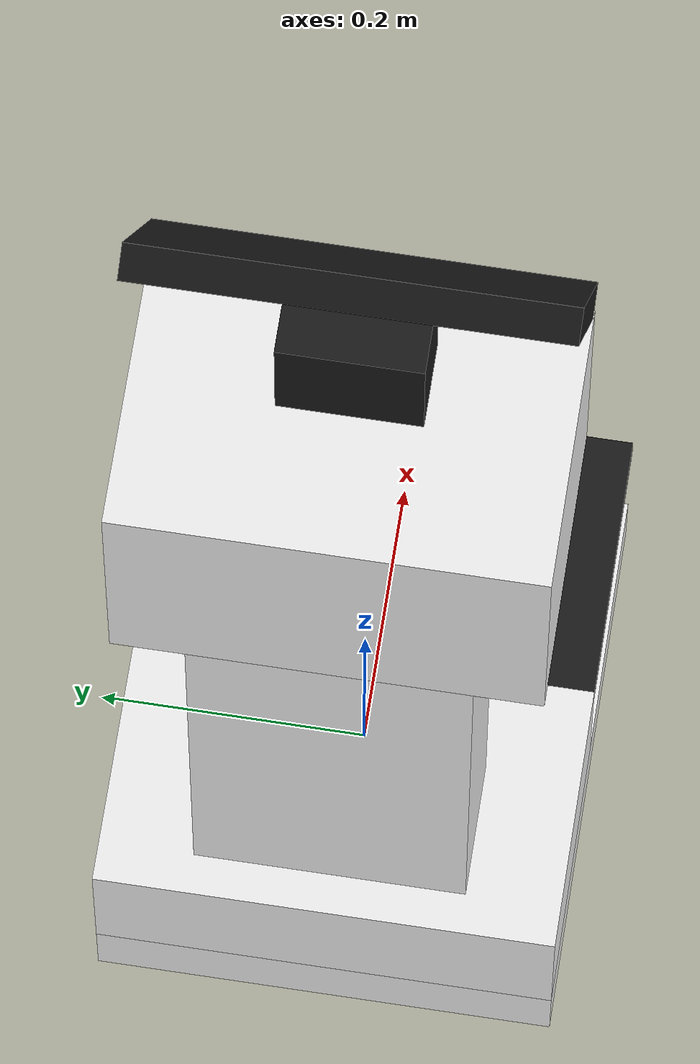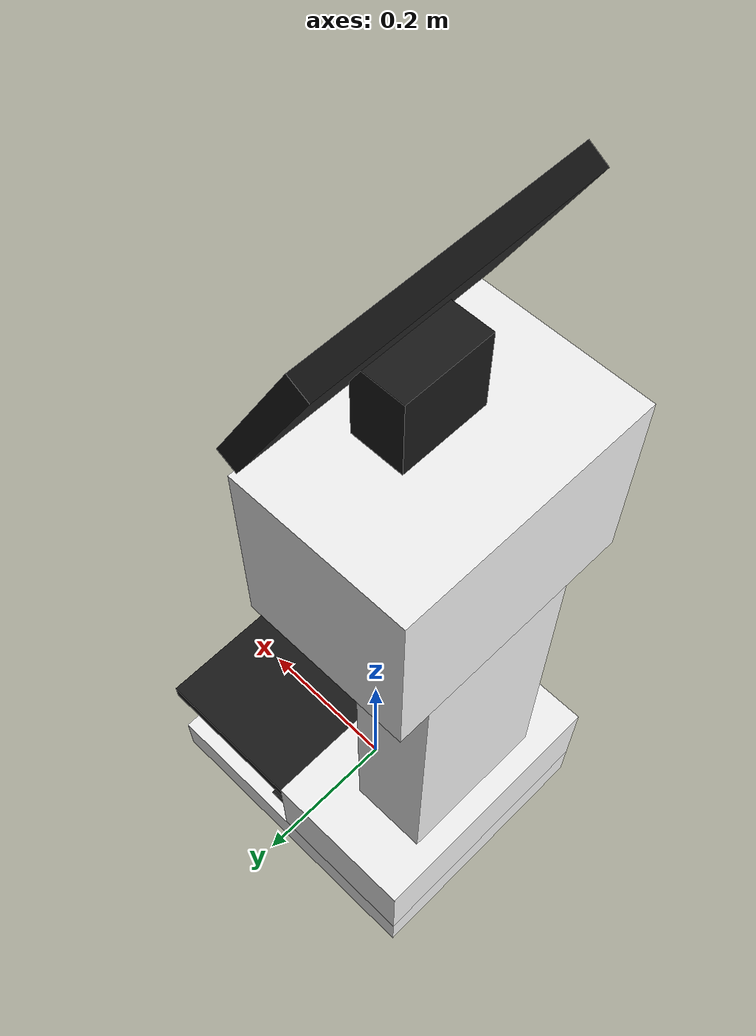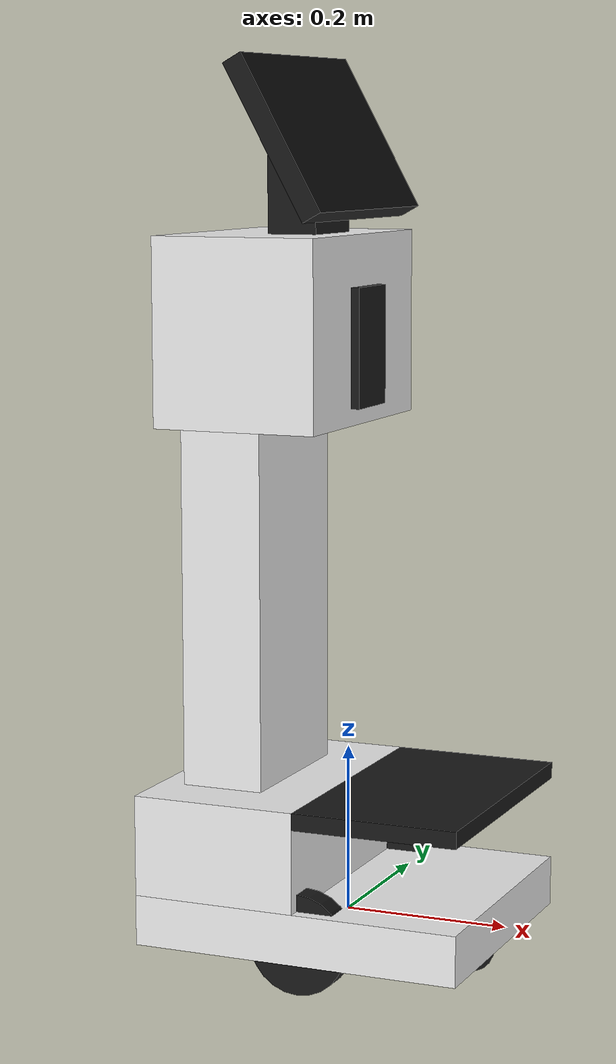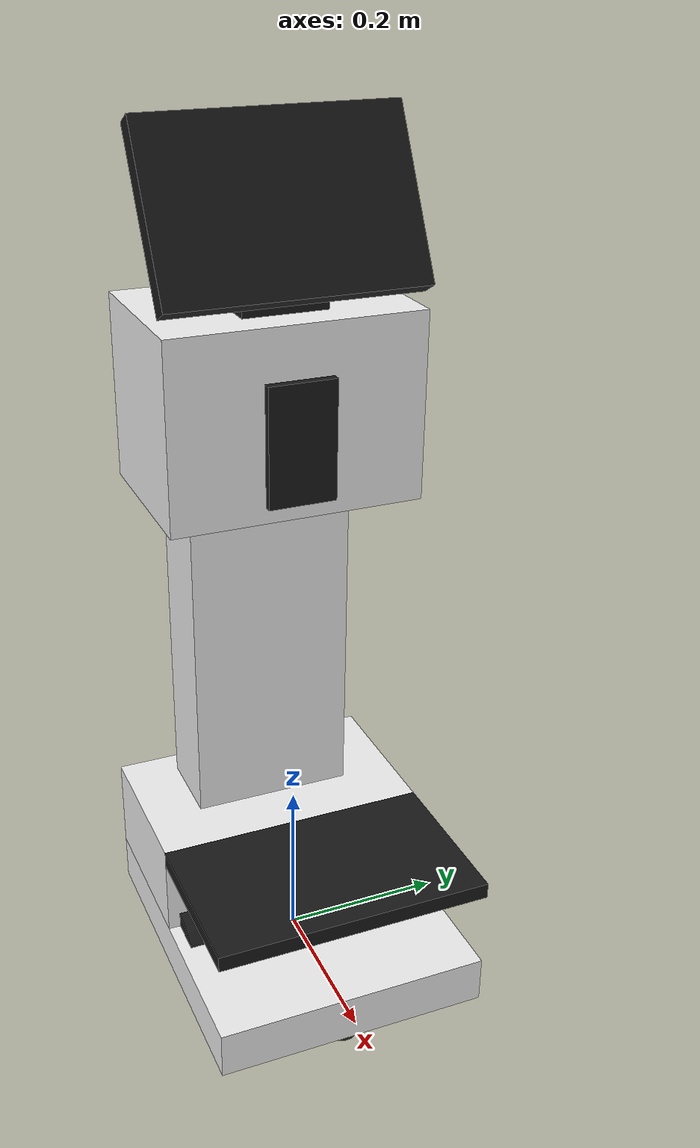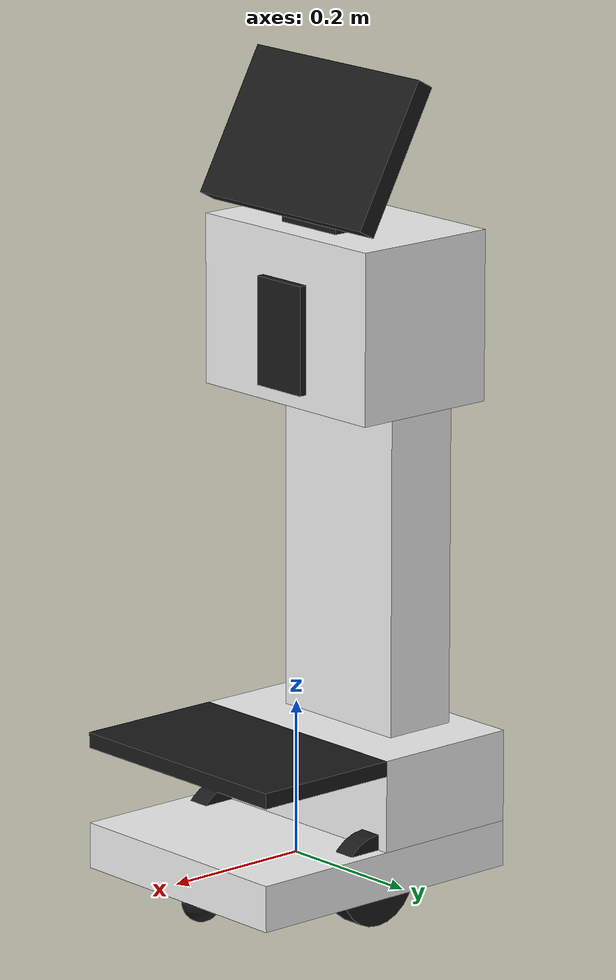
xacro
<?xml version="1.0"?>
<robot name="temi" xmlns:xacro="http://www.ros.org/wiki/xacro">
  <xacro:include filename="$(find arena_robots)/components/utils/inertia.urdf.xacro" />

  <xacro:property name="PI" value="3.1415926535897931" />

  <xacro:property name="wheel_radius" value="0.06" />
  <xacro:property name="wheel_width" value="0.03" />
  <xacro:property name="wheel_mass" value="0.3" />
  <xacro:property name="wheel_y" value="0.14" />
  <xacro:property name="caster_radius" value="0.025" />
  <xacro:property name="caster_x" value="0.16" />
  <xacro:property name="caster_lift" value="0.003" />
  <xacro:property name="head_tilt" value="0.5" />

  <material name="temi_white"><color rgba="0.95 0.95 0.95 1.0" /></material>
  <material name="temi_black"><color rgba="0.1 0.1 0.1 1.0" /></material>

  <link name="base_link"></link>

  <joint name="base_link_joint" type="fixed">
    <origin xyz="0 0 0" rpy="0 0 0" />
    <parent link="base_link" />
    <child link="chassis_link" />
  </joint>

  <link name="chassis_link">
    <visual>
      <origin xyz="0 0 0.01" rpy="0 0 0" />
      <geometry><box size="0.40 0.34 0.06" /></geometry>
      <material name="temi_white" />
    </visual>
    <visual>
      <origin xyz="-0.10 0 0.10" rpy="0 0 0" />
      <geometry><box size="0.20 0.34 0.12" /></geometry>
      <material name="temi_white" />
    </visual>
    <visual>
      <origin xyz="0.10 0 0.15" rpy="0 0 0" />
      <geometry><box size="0.20 0.34 0.02" /></geometry>
      <material name="temi_black" />
    </visual>
    <collision>
      <origin xyz="0 0 0.01" rpy="0 0 0" />
      <geometry><box size="0.40 0.34 0.06" /></geometry>
    </collision>
    <collision>
      <origin xyz="-0.10 0 0.10" rpy="0 0 0" />
      <geometry><box size="0.20 0.34 0.12" /></geometry>
    </collision>
    <collision>
      <origin xyz="0.10 0 0.15" rpy="0 0 0" />
      <geometry><box size="0.20 0.34 0.02" /></geometry>
    </collision>
    <inertial>
      <origin xyz="-0.03 0 0.05" rpy="0 0 0" />
      <mass value="7.0" />
      <xacro:solid_cuboid_inertia m="7.0" w="0.40" h="0.34" d="0.16" />
    </inertial>
  </link>

  <joint name="body_joint" type="fixed">
    <origin xyz="0 0 0.16" rpy="0 0 0" />
    <parent link="chassis_link" />
    <child link="body_link" />
  </joint>

  <link name="body_link">
    <visual>
      <origin xyz="-0.12 0 0.225" rpy="0 0 0" />
      <geometry><box size="0.10 0.20 0.45" /></geometry>
      <material name="temi_white" />
    </visual>
    <visual>
      <origin xyz="-0.08 0 0.54" rpy="0 0 0" />
      <geometry><box size="0.20 0.30 0.22" /></geometry>
      <material name="temi_white" />
    </visual>
    <visual>
      <origin xyz="0.025 0 0.52" rpy="0 0 0" />
      <geometry><box size="0.01 0.08 0.14" /></geometry>
      <material name="temi_black" />
    </visual>
    <visual>
      <origin xyz="-0.05 0 0.695" rpy="0 0 0" />
      <geometry><box size="0.06 0.10 0.09" /></geometry>
      <material name="temi_black" />
    </visual>
    <collision>
      <origin xyz="-0.12 0 0.225" rpy="0 0 0" />
      <geometry><box size="0.10 0.20 0.45" /></geometry>
    </collision>
    <collision>
      <origin xyz="-0.08 0 0.54" rpy="0 0 0" />
      <geometry><box size="0.20 0.30 0.22" /></geometry>
    </collision>
    <inertial>
      <origin xyz="-0.10 0 0.37" rpy="0 0 0" />
      <mass value="3.0" />
      <xacro:solid_cuboid_inertia m="3.0" w="0.20" h="0.30" d="0.65" />
    </inertial>
  </link>

  <joint name="head_joint" type="fixed">
    <origin xyz="-0.03 0 0.76" rpy="0 ${-head_tilt} 0" />
    <parent link="body_link" />
    <child link="head_link" />
  </joint>

  <link name="head_link">
    <visual>
      <origin xyz="0 0 0" rpy="0 0 0" />
      <geometry><box size="0.025 0.30 0.20" /></geometry>
      <material name="temi_black" />
    </visual>
    <collision>
      <origin xyz="0 0 0" rpy="0 0 0" />
      <geometry><box size="0.025 0.30 0.20" /></geometry>
    </collision>
    <inertial>
      <origin xyz="0 0 0" rpy="0 0 0" />
      <mass value="1.2" />
      <xacro:solid_cuboid_inertia m="1.2" w="0.025" h="0.30" d="0.20" />
    </inertial>
  </link>

  <xacro:macro name="wheel" params="prefix y">
    <link name="${prefix}_wheel_link">
      <visual>
        <origin xyz="0 0 0" rpy="${PI/2} 0 0" />
        <geometry><cylinder radius="${wheel_radius}" length="${wheel_width}" /></geometry>
        <material name="temi_black" />
      </visual>
      <collision>
        <origin xyz="0 0 0" rpy="${PI/2} 0 0" />
        <geometry><cylinder radius="${wheel_radius}" length="${wheel_width}" /></geometry>
      </collision>
      <inertial>
        <origin xyz="0 0 0" rpy="${PI/2} 0 0" />
        <mass value="${wheel_mass}" />
        <xacro:solid_cylinder_inertia m="${wheel_mass}" r="${wheel_radius}" h="${wheel_width}" />
      </inertial>
    </link>

    <gazebo reference="${prefix}_wheel_link">
      <selfCollide>false</selfCollide>
      <mu1 value="1.0" />
      <mu2 value="1.0" />
      <kp value="10000000.0" />
      <kd value="1" />
      <fdir1 value="1 0 0" />
    </gazebo>

    <joint name="${prefix}_wheel" type="continuous">
      <parent link="chassis_link" />
      <child link="${prefix}_wheel_link" />
      <origin xyz="0 ${y} 0" rpy="0 0 0" />
      <axis xyz="0 1 0" />
    </joint>
  </xacro:macro>

  <xacro:wheel prefix="left" y="${wheel_y}" />
  <xacro:wheel prefix="right" y="${-wheel_y}" />

  <xacro:macro name="caster" params="prefix x">
    <link name="${prefix}_caster_link">
      <visual>
        <origin xyz="0 0 0" rpy="0 0 0" />
        <geometry><sphere radius="${caster_radius}" /></geometry>
        <material name="temi_black" />
      </visual>
      <collision>
        <origin xyz="0 0 0" rpy="0 0 0" />
        <geometry><sphere radius="${caster_radius}" /></geometry>
      </collision>
      <inertial>
        <origin xyz="0 0 0" rpy="0 0 0" />
        <mass value="0.1" />
        <xacro:solid_sphere_inertia m="0.1" r="${caster_radius}" />
      </inertial>
    </link>

    <joint name="${prefix}_caster_joint" type="fixed">
      <parent link="chassis_link" />
      <child link="${prefix}_caster_link" />
      <origin xyz="${x} 0 ${caster_radius - wheel_radius + caster_lift}" rpy="0 0 0" />
    </joint>

    <gazebo reference="${prefix}_caster_link">
      <mu1>0.0</mu1>
      <mu2>0.0</mu2>
      <kp>1000000.0</kp>
      <kd>100.0</kd>
      <minDepth>0.0</minDepth>
    </gazebo>
  </xacro:macro>

  <xacro:caster prefix="front" x="${caster_x}" />
  <xacro:caster prefix="rear" x="${-caster_x}" />

  <xacro:arg name="namespace" default="" />
  <xacro:arg name="prefix" default="" />
  <xacro:arg name="gazebo_classic" default="false" />
  <xacro:arg name="gazebo_ignition" default="true" />

  <xacro:include filename="$(find arena_robots)/robots/temi/urdf/base_hw/temi.ros2_control.urdf" />
  <xacro:include filename="$(find arena_robots)/robots/temi/urdf/temi.gazebo" />

  <xacro:temi_base_hw_controller />
</robot>
